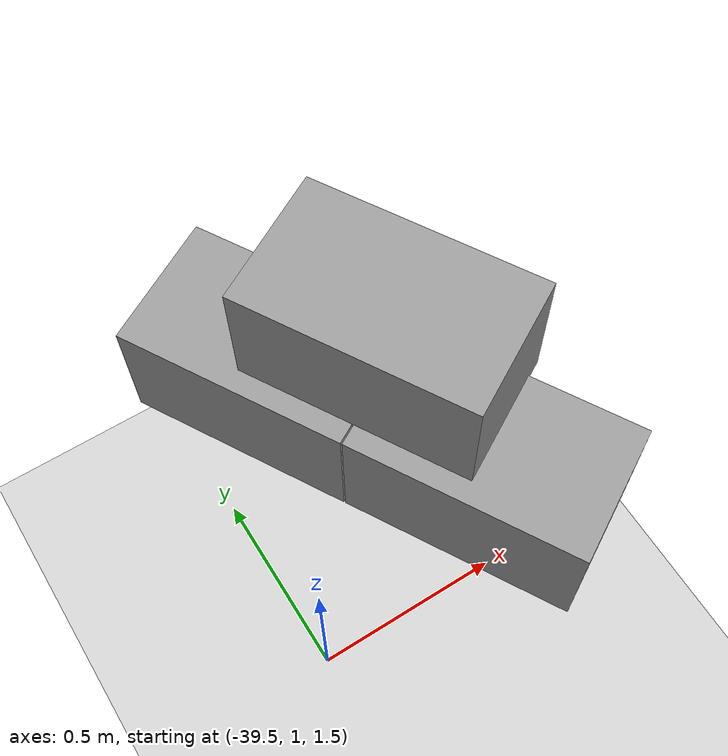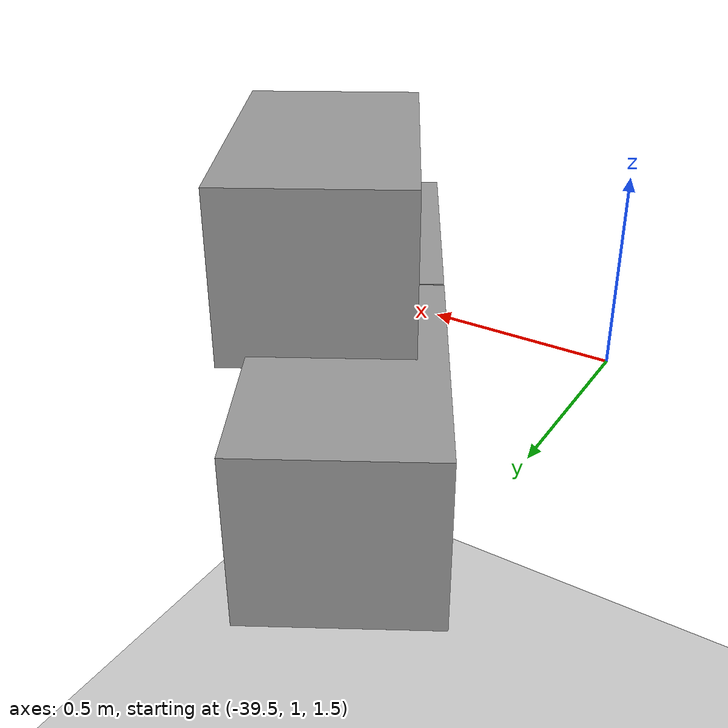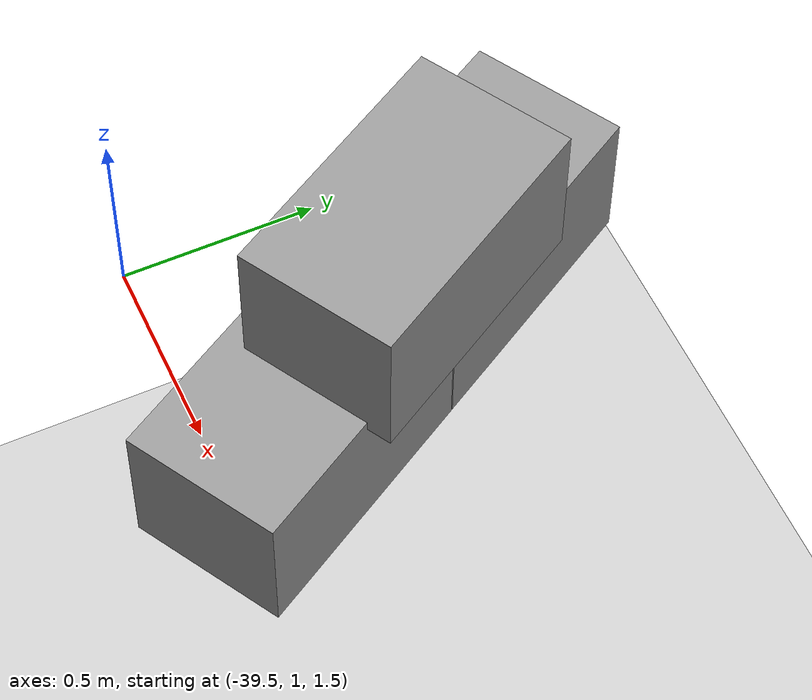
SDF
<sdf version="1.7">
 <world name="default">
  <model name="ground_plane">
   <static>1</static>
   <link name="link">
    <collision name="collision">
     <geometry><plane><normal>0 0 1</normal><size>100 100</size></plane></geometry>
     <surface>
      <contact><collide_bitmask>65535</collide_bitmask></contact>
      <friction><ode><mu>100</mu><mu2>50</mu2></ode></friction>
     </surface>
    </collision>
    <visual name="visual">
     <cast_shadows>0</cast_shadows>
     <geometry><plane><normal>0 0 1</normal><size>100 100</size></plane></geometry>
     <material>
      <script><uri>file://media/materials/scripts/gazebo.material</uri><name>Gazebo/Grey</name></script>
     </material>
    </visual>
   </link>
  </model>
  <model name="Add_Box_clone_clone_3_clone_24">
   <link name="link">
    <inertial>
     <mass>1</mass>
     <inertia>
      <ixx>0.166667</ixx>
      <ixy>0</ixy>
      <ixz>0</ixz>
      <iyy>0.166667</iyy>
      <iyz>0</iyz>
      <izz>0.166667</izz>
     </inertia>
    </inertial>
    <kinematic>1</kinematic>
    <gravity>0</gravity>
    <visual name="visual">
     <geometry><box><size>0.686 0.406 0.381</size></box></geometry>
     <material>
      <script><name>Gazebo/Grey</name><uri>file://media/materials/scripts/gazebo.material</uri></script>
      <shader type="pixel"><normal_map>__default__</normal_map></shader>
      <ambient>0.3 0.3 0.3 1</ambient>
      <diffuse>0.7 0.7 0.7 1</diffuse>
      <specular>0.01 0.01 0.01 1</specular>
      <emissive>0 0 0 1</emissive>
     </material>
    </visual>
    <collision name="collision">
     <geometry><box><size>1 1 1</size></box></geometry>
     <surface>
      <friction>
       <ode><mu>1</mu><mu2>1</mu2><fdir1>0 0 0</fdir1><slip1>0</slip1><slip2>0</slip2></ode>
       <torsional>
        <coefficient>1</coefficient>
        <patch_radius>0</patch_radius>
        <surface_radius>0</surface_radius>
        <use_patch_radius>1</use_patch_radius>
        <ode><slip>0</slip></ode>
       </torsional>
      </friction>
      <bounce><restitution_coefficient>0</restitution_coefficient><threshold>1e+06</threshold></bounce>
      <contact>
       <collide_without_contact>0</collide_without_contact>
       <collide_without_contact_bitmask>1</collide_without_contact_bitmask>
       <collide_bitmask>1</collide_bitmask>
       <ode>
        <soft_cfm>0</soft_cfm>
        <soft_erp>0.2</soft_erp>
        <kp>1e+13</kp>
        <kd>1</kd>
        <max_vel>0.01</max_vel>
        <min_depth>0</min_depth>
       </ode>
       <bullet>
        <split_impulse>1</split_impulse>
        <split_impulse_penetration_threshold>-0.01</split_impulse_penetration_threshold>
        <soft_cfm>0</soft_cfm>
        <soft_erp>0.2</soft_erp>
        <kp>1e+13</kp>
        <kd>1</kd>
       </bullet>
      </contact>
     </surface>
    </collision>
   </link>
   <link name="link_clone">
    <inertial>
     <mass>1</mass>
     <inertia>
      <ixx>0.166667</ixx>
      <ixy>0</ixy>
      <ixz>0</ixz>
      <iyy>0.166667</iyy>
      <iyz>0</iyz>
      <izz>0.166667</izz>
     </inertia>
    </inertial>
    <pose>-0.343354 -0.063316 0.354303 1e-05 -0 0</pose>
    <gravity>0</gravity>
    <visual name="visual">
     <geometry><box><size>0.686 0.406 0.381</size></box></geometry>
     <material>
      <script><name>Gazebo/Grey</name><uri>file://media/materials/scripts/gazebo.material</uri></script>
      <shader type="pixel"><normal_map>__default__</normal_map></shader>
      <ambient>0.3 0.3 0.3 1</ambient>
      <diffuse>0.7 0.7 0.7 1</diffuse>
      <specular>0.01 0.01 0.01 1</specular>
      <emissive>0 0 0 1</emissive>
     </material>
    </visual>
    <collision name="collision">
     <geometry><box><size>1 1 1</size></box></geometry>
     <surface>
      <friction>
       <ode><mu>1</mu><mu2>1</mu2><fdir1>0 0 0</fdir1><slip1>0</slip1><slip2>0</slip2></ode>
       <torsional>
        <coefficient>1</coefficient>
        <patch_radius>0</patch_radius>
        <surface_radius>0</surface_radius>
        <use_patch_radius>1</use_patch_radius>
        <ode><slip>0</slip></ode>
       </torsional>
      </friction>
      <bounce><restitution_coefficient>0</restitution_coefficient><threshold>1e+06</threshold></bounce>
      <contact>
       <collide_without_contact>0</collide_without_contact>
       <collide_without_contact_bitmask>1</collide_without_contact_bitmask>
       <collide_bitmask>1</collide_bitmask>
       <ode>
        <soft_cfm>0</soft_cfm>
        <soft_erp>0.2</soft_erp>
        <kp>1e+13</kp>
        <kd>1</kd>
        <max_vel>0.01</max_vel>
        <min_depth>0</min_depth>
       </ode>
       <bullet>
        <split_impulse>1</split_impulse>
        <split_impulse_penetration_threshold>-0.01</split_impulse_penetration_threshold>
        <soft_cfm>0</soft_cfm>
        <soft_erp>0.2</soft_erp>
        <kp>1e+13</kp>
        <kd>1</kd>
       </bullet>
      </contact>
     </surface>
    </collision>
   </link>
   <link name="link_clone_clone">
    <inertial>
     <mass>1</mass>
     <inertia>
      <ixx>0.166667</ixx>
      <ixy>0</ixy>
      <ixz>0</ixz>
      <iyy>0.166667</iyy>
      <iyz>0</iyz>
      <izz>0.166667</izz>
     </inertia>
    </inertial>
    <pose>-0.690786 -0.000183 -1e-05 2e-05 -0 0</pose>
    <gravity>0</gravity>
    <visual name="visual">
     <geometry><box><size>0.686 0.406 0.381</size></box></geometry>
     <material>
      <script><name>Gazebo/Grey</name><uri>file://media/materials/scripts/gazebo.material</uri></script>
      <shader type="pixel"><normal_map>__default__</normal_map></shader>
      <ambient>0.3 0.3 0.3 1</ambient>
      <diffuse>0.7 0.7 0.7 1</diffuse>
      <specular>0.01 0.01 0.01 1</specular>
      <emissive>0 0 0 1</emissive>
     </material>
    </visual>
    <collision name="collision">
     <geometry><box><size>1 1 1</size></box></geometry>
     <surface>
      <friction>
       <ode><mu>1</mu><mu2>1</mu2><fdir1>0 0 0</fdir1><slip1>0</slip1><slip2>0</slip2></ode>
       <torsional>
        <coefficient>1</coefficient>
        <patch_radius>0</patch_radius>
        <surface_radius>0</surface_radius>
        <use_patch_radius>1</use_patch_radius>
        <ode><slip>0</slip></ode>
       </torsional>
      </friction>
      <bounce><restitution_coefficient>0</restitution_coefficient><threshold>1e+06</threshold></bounce>
      <contact>
       <collide_without_contact>0</collide_without_contact>
       <collide_without_contact_bitmask>1</collide_without_contact_bitmask>
       <collide_bitmask>1</collide_bitmask>
       <ode>
        <soft_cfm>0</soft_cfm>
        <soft_erp>0.2</soft_erp>
        <kp>1e+13</kp>
        <kd>1</kd>
        <max_vel>0.01</max_vel>
        <min_depth>0</min_depth>
       </ode>
       <bullet>
        <split_impulse>1</split_impulse>
        <split_impulse_penetration_threshold>-0.01</split_impulse_penetration_threshold>
        <soft_cfm>0</soft_cfm>
        <soft_erp>0.2</soft_erp>
        <kp>1e+13</kp>
        <kd>1</kd>
       </bullet>
      </contact>
     </surface>
    </collision>
   </link>
   <static>0</static>
   <pose>-39.2119 1.78372 1.61518 0 -0 2.09325</pose>
  </model>
 </world>
</sdf>
